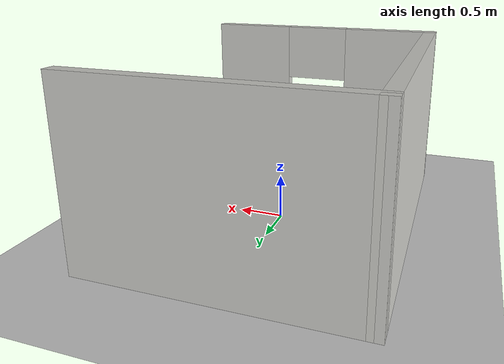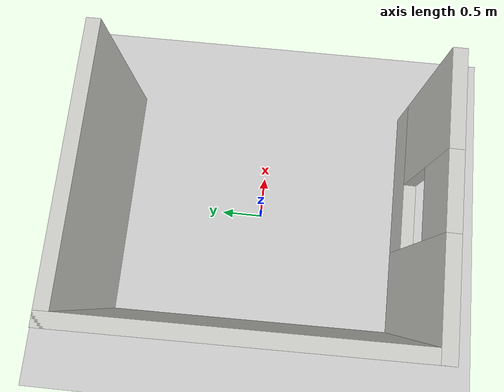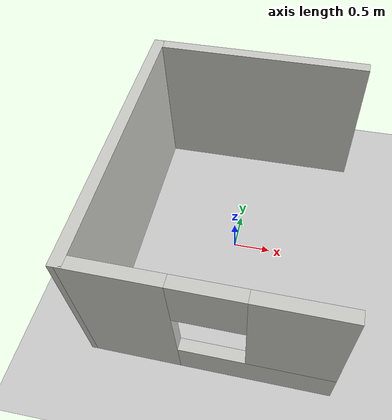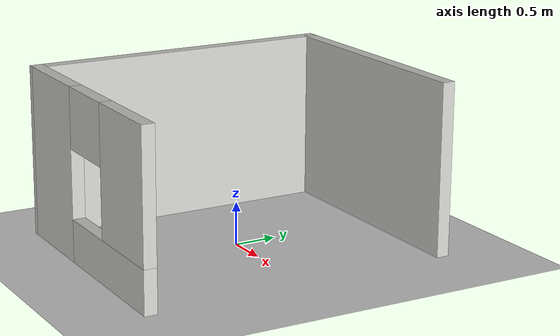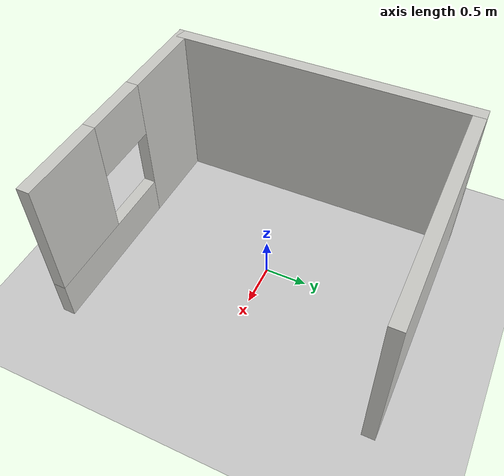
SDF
<sdf version="1.7">
 <world name="default">
  <plugin name="gazebo_ros_state" filename="libgazebo_ros_state.so">
   <ros>
    <namespace>/demo</namespace>
    <argument>model_states:=model_states_demo</argument>
    <argument>link_states:=link_states_demo</argument>
   </ros>
   <update_rate>1000.0</update_rate>
  </plugin>
  <light name="sun" type="directional">
   <pose>0 0 10 0 -0 0</pose>
   <diffuse>0.8 0.8 0.8 1</diffuse>
   <specular>0.5 0.5 0.5 1</specular>
   <attenuation>
    <range>1000</range>
    <constant>0.9</constant>
    <linear>0.01</linear>
    <quadratic>0.001</quadratic>
   </attenuation>
   <direction>-0.5 0.1 -0.9</direction>
   <spot><inner_angle>0</inner_angle><outer_angle>0</outer_angle><falloff>0</falloff></spot>
  </light>
  <model name="ground_plane">
   <static>1</static>
   <link name="link">
    <collision name="collision">
     <geometry><plane><normal>0 0 1</normal><size>50 50</size></plane></geometry>
     <surface><friction><ode><mu>100</mu><mu2>50</mu2></ode></friction></surface>
    </collision>
    <visual name="visual">
     <cast_shadows>0</cast_shadows>
     <geometry><plane><normal>0 0 1</normal><size>100 100</size></plane></geometry>
     <material>
      <script><uri>file://media/materials/scripts/gazebo.material</uri><name>Gazebo/Grey</name></script>
     </material>
    </visual>
   </link>
  </model>
  <gravity>0 0 -9.8</gravity>
  <magnetic_field>6e-06 2.3e-05 -4.2e-05</magnetic_field>
  <atmosphere type="adiabatic"/>
  <physics type="ode">
   <max_step_size>0.001</max_step_size>
   <real_time_factor>1</real_time_factor>
   <real_time_update_rate>1000</real_time_update_rate>
  </physics>
  <scene><ambient>0.4 0.4 0.4 1</ambient><background>0.7 0.7 0.7 1</background><shadows>1</shadows></scene>
  <audio><device>default</device></audio>
  <spherical_coordinates>
   <surface_model>EARTH_WGS84</surface_model>
   <latitude_deg>0</latitude_deg>
   <longitude_deg>0</longitude_deg>
   <elevation>0</elevation>
   <heading_deg>0</heading_deg>
  </spherical_coordinates>
  <model name="walls">
   <link name="Wall_10">
    <collision name="Wall_10_Collision">
     <geometry><box><size>3.74497 0.15 2</size></box></geometry>
     <pose>0 0 1 0 -0 0</pose>
    </collision>
    <visual name="Wall_10_Visual">
     <pose>0 0 1 0 -0 0</pose>
     <geometry><box><size>3.74497 0.15 2</size></box></geometry>
     <material>
      <script><uri>file://media/materials/scripts/gazebo.material</uri><name>Gazebo/CeilingTiled</name></script>
      <ambient>1 1 1 1</ambient>
     </material>
     <meta><layer>0</layer></meta>
    </visual>
    <pose>-1.42504 0.017644 0 0 -0 -1.56106</pose>
   </link>
   <link name="Wall_12">
    <pose>0.017459 -1.79736 0 0 -0 -0.01228</pose>
    <visual name="Wall_12_Visual_0">
     <pose>-0.919239 0 1 0 -0 0</pose>
     <geometry><box><size>1.16152 0.15 2</size></box></geometry>
     <material>
      <script><uri>file://media/materials/scripts/gazebo.material</uri><name>Gazebo/CeilingTiled</name></script>
      <ambient>1 1 1 1</ambient>
     </material>
     <meta><layer>0</layer></meta>
    </visual>
    <collision name="Wall_12_Collision_0">
     <geometry><box><size>1.16152 0.15 2</size></box></geometry>
     <pose>-0.919239 0 1 0 -0 0</pose>
    </collision>
    <visual name="Wall_12_Visual_1">
     <pose>0.580761 0 0.25 0 -0 0</pose>
     <geometry><box><size>1.83848 0.15 0.5</size></box></geometry>
     <material>
      <script><uri>file://media/materials/scripts/gazebo.material</uri><name>Gazebo/CeilingTiled</name></script>
      <ambient>1 1 1 1</ambient>
     </material>
     <meta><layer>0</layer></meta>
    </visual>
    <collision name="Wall_12_Collision_1">
     <geometry><box><size>1.83848 0.15 0.5</size></box></geometry>
     <pose>0.580761 0 0.25 0 -0 0</pose>
    </collision>
    <visual name="Wall_12_Visual_2">
     <pose>0.980761 0 1.25 0 -0 0</pose>
     <geometry><box><size>1.03848 0.15 1.5</size></box></geometry>
     <material>
      <script><uri>file://media/materials/scripts/gazebo.material</uri><name>Gazebo/CeilingTiled</name></script>
      <ambient>1 1 1 1</ambient>
     </material>
     <meta><layer>0</layer></meta>
    </visual>
    <collision name="Wall_12_Collision_2">
     <geometry><box><size>1.03848 0.15 1.5</size></box></geometry>
     <pose>0.980761 0 1.25 0 -0 0</pose>
    </collision>
    <visual name="Wall_12_Visual_3">
     <pose>0.061522 0 1.65 0 -0 0</pose>
     <geometry><box><size>0.8 0.15 0.7</size></box></geometry>
     <material>
      <script><uri>file://media/materials/scripts/gazebo.material</uri><name>Gazebo/CeilingTiled</name></script>
      <ambient>1 1 1 1</ambient>
     </material>
     <meta><layer>0</layer></meta>
    </visual>
    <collision name="Wall_12_Collision_3">
     <geometry><box><size>0.8 0.15 0.7</size></box></geometry>
     <pose>0.061522 0 1.65 0 -0 0</pose>
    </collision>
   </link>
   <link name="Wall_5">
    <collision name="Wall_5_Collision">
     <geometry><box><size>3 0.15 2</size></box></geometry>
     <pose>0 0 1 0 -0 0</pose>
    </collision>
    <visual name="Wall_5_Visual">
     <pose>0 0 1 0 -0 0</pose>
     <geometry><box><size>3 0.15 2</size></box></geometry>
     <material>
      <script><uri>file://media/materials/scripts/gazebo.material</uri><name>Gazebo/CeilingTiled</name></script>
      <ambient>1 1 1 1</ambient>
     </material>
     <meta><layer>0</layer></meta>
    </visual>
    <pose>-0.017541 1.81514 0 0 -0 0</pose>
   </link>
   <static>1</static>
  </model>
 </world>
</sdf>
